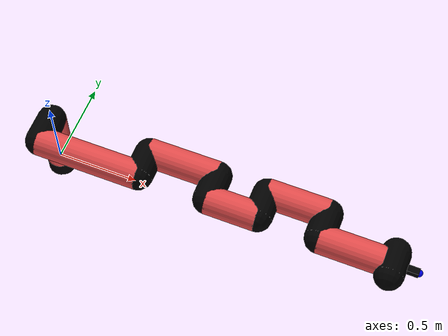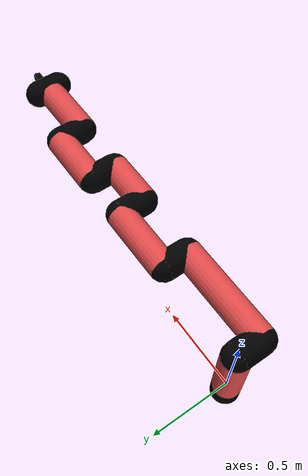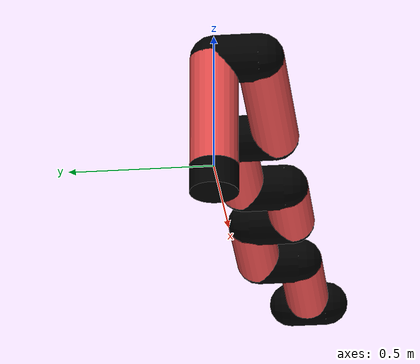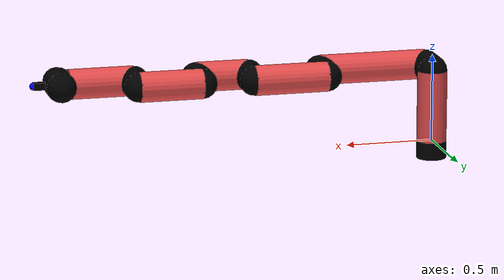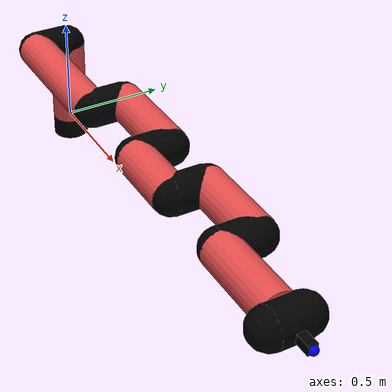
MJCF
<mujoco model="manipulator">
		<compiler angle="degree" coordinate="local" inertiafromgeom="auto" meshdir="meshes/"/>
		<option gravity="0 0 0" integrator="RK4" iterations="30" timestep="0.01"/>

		<default>
		<joint armature="1" limited="true" stiffness="10" damping="15" frictionloss="5.0"/>
		<geom conaffinity="1" condim="3" contype="1" friction=".5 .1 .1" margin="0.002"/>
		<motor ctrllimited="true"/>
		<position ctrllimited="true"/>
		</default>

		<asset>
		<texture builtin="gradient" height="100" rgb1="1.0 1.0 1.0" rgb2="1.0 1.0 1.0" type="skybox" width="100"/>
		<texture builtin="flat" height="32" name="arm_tex" rgb1="0.9 0.3 0.3" type="2d" width="32"/>
		<texture builtin="flat" height="32" name="gripper_tex" rgb1="0.0 0.0 0.0" type="cube" width="32"/>

		<material name="arm_mat" shininess="0.1" specular="0.1" texture="arm_tex"/>
		<material name="gripper_mat" shininess="1" specular="1" texture="gripper_tex"/>
		</asset>

		<worldbody>
		<light cutoff="45" diffuse=".8 .8 .8" dir="0 0.16 -1" directional="false" name="light" pos="0 -2.0 8.0" specular="0.3 0.3 0.3"/>

		<body name="base_link" pos="0 0 -0.1">
		<geom fromto="0 0 0 0 0 0.1" material="arm_mat" name="base_link" rgba="0.0 0.0 0.0 1" size="0.085" type="cylinder"/>
		</body>

		<body name="l1" pos="0 0 0">
<geom fromto="0 0 0 0 0 0.41" material="arm_mat" name="l1" rgba="0.9 0.3 0.3 1" size="0.085" type="cylinder"/>
<geom fromto="0 0 0.41 0 -0.16 0.41" material="arm_mat" name="l1_ex" rgba="0.0 0.0 0.0 1" size="0.085" type="capsule"/>
<joint axis="0 0 1" name="j1" pos="0 0 0" range="-90 90" damping="33.8" frictionloss="8.19"/>

<body name="l2" pos="0 -0.16 0.41">
<geom fromto="0 0 0 0.62 0 0" material="arm_mat" name="l2" rgba="0.9 0.3 0.3 1" size="0.085" type="cylinder"/>
<geom fromto="0.62 0 0 0.62 0.16 0" material="arm_mat" name="l2_ex" rgba="0.0 0.0 0.0 1" size="0.085" type="capsule"/>
<joint axis="0.0 1.0 0.0" name="j2" pos="0 0 0" range="-90 60" damping="43.46" frictionloss="10.53"/>

<body name="l3" pos="0.62 0.16 0">
<geom fromto="0 0 0 0.42 0 0" material="arm_mat" name="l3" rgba="0.9 0.3 0.3 1" size="0.085" type="cylinder"/>
<geom fromto="0.42 0 0 0.42 -0.16 0" material="arm_mat" name="l3_ex" rgba="0.0 0.0 0.0 1" size="0.085" type="capsule"/>
<joint axis="0.0 1.0 0.0" name="j3" pos="0 0 0" range="-30 60" damping="29.44" frictionloss="9.61"/>

<body name="l4" pos="0.42 -0.16 0">
<geom fromto="0 0 0 0.3 0 0" material="arm_mat" name="l4" rgba="0.9 0.3 0.3 1" size="0.085" type="cylinder"/>
<geom fromto="0.3 0 0 0.3 0.16 0" material="arm_mat" name="l4_ex" rgba="0.0 0.0 0.0 1" size="0.085" type="capsule"/>
<joint axis="0.0 1.0 0.0" name="j4" pos="0 0 0" range="-30 60" damping="38.81" frictionloss="9.07"/>

<body name="l5" pos="0.3 0.16 0">
<geom fromto="0 0 0 0.36 0 0" material="arm_mat" name="l5" rgba="0.9 0.3 0.3 1" size="0.085" type="cylinder"/>
<geom fromto="0.36 0 0 0.36 -0.16 0" material="arm_mat" name="l5_ex" rgba="0.0 0.0 0.0 1" size="0.085" type="capsule"/>
<joint axis="0.0 1.0 0.0" name="j5" pos="0 0 0" range="-30 60" damping="12.71" frictionloss="10.09"/>

<body name="l6" pos="0.36 -0.16 0">
<geom fromto="0 0 0 0.37 0 0" material="arm_mat" name="l6" rgba="0.9 0.3 0.3 1" size="0.085" type="cylinder"/>
<joint axis="0.0 1.0 0.0" name="j6" pos="0 0 0" range="-30 60" damping="26.47" frictionloss="12.27"/>

<body name="gripper" pos="0.37 0 0">
<geom fromto="0.05 -0.07 0 0.05 0.07 0" material="gripper_mat" name="gripper" rgba="0.0 0.0 0.0 1" size="0.085" type="capsule"/><joint axis="1 0 0" name="j7" pos="0 0 0" range="-90 90" damping="15" frictionloss="5.0"/><body name="finger" pos="0.1 0 0">
<geom fromto="0 0.0 0 0.1 0.0 0" material="gripper_mat" name="finger" rgba="0.0 0.0 0.0 1" size="0.020 0.06 0.06" type="box"/>
</body>
<site name="current" pos="0.2 0. 0.0" rgba="0. 0. 1.0 1" size="0.02" type="sphere"/>
</body>
</body>
</body>
</body>
</body>
</body>
</body>
</worldbody>
<actuator>
<motor ctrllimited="true" ctrlrange="-1.0 1.0" joint="j1" gear="57.4"/>
<motor ctrllimited="true" ctrlrange="-1.0 1.0" joint="j2" gear="46.6"/>
<motor ctrllimited="true" ctrlrange="-1.0 1.0" joint="j3" gear="36.36"/>
<motor ctrllimited="true" ctrlrange="-1.0 1.0" joint="j4" gear="66.1"/>
<motor ctrllimited="true" ctrlrange="-1.0 1.0" joint="j5" gear="122.83"/>
<motor ctrllimited="true" ctrlrange="-1.0 1.0" joint="j6" gear="90.08"/>
<motor ctrllimited="true" ctrlrange="-1.0 1.0" joint="j7" gear="80"/>
</actuator>
</mujoco>
